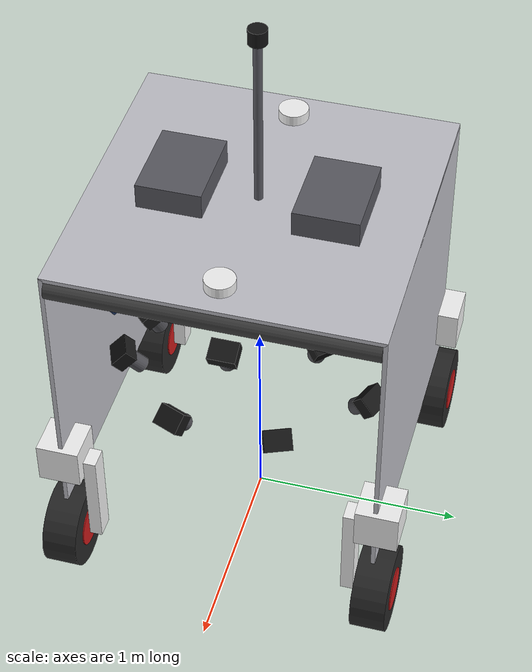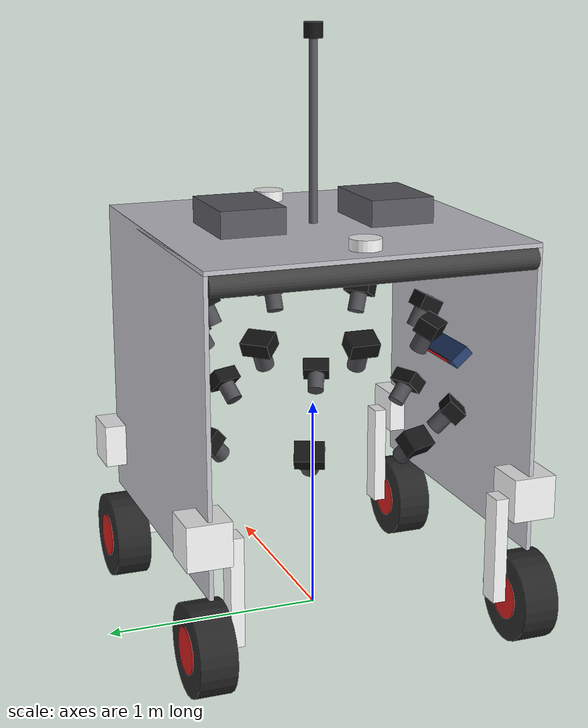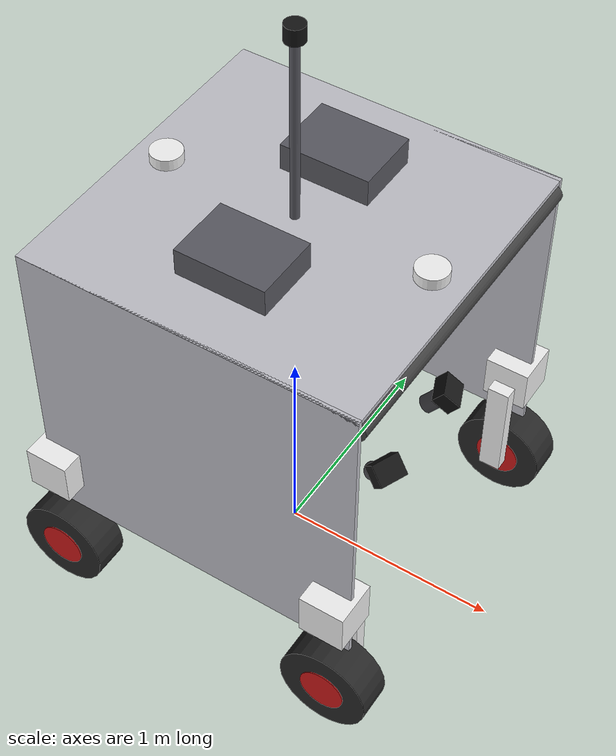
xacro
<?xml version="1.0"?>
<robot name="agri_ugv" xmlns:xacro="http://www.ros.org/wiki/xacro">

  <xacro:include filename="inertial_macros.xacro"/>
  <xacro:include filename="gazebo_control.xacro"/>
  <xacro:include filename="soil.xacro"/>
  <xacro:include filename="sensors.xacro"/>
  <xacro:include filename="payload.xacro"/>

  <!-- Path to the controller settings; empty = no ros2_control (e.g. RViz only) -->
  <xacro:arg name="controllers_file" default=""/>
  <!-- A second controller settings file, for hardware mounted on the robot that has its own
       ros2_control joints (e.g. an arm); empty = none (gazebo_control.xacro) -->
  <xacro:arg name="extra_controllers_file" default=""/>
  <!-- Soil profile in Gazebo: rigid (default, no slip model), firm, soft or wet (soil.xacro) -->
  <xacro:arg name="soil" default="rigid"/>
  <!-- The 3D LiDAR on the roof (sensors.xacro); false leaves it out, e.g. to save rendering -->
  <xacro:arg name="lidar" default="true"/>
  <!-- The two laser line scanners as sensors (sensors.xacro); false: visual only -->
  <xacro:arg name="scanners" default="true"/>
  <!-- their profiles per second; each one costs rendering time (the real ones: 200) -->
  <xacro:arg name="scanner_rate" default="10"/>
  <!-- The dome cameras as sensors (sensors.xacro): none (visual only), top (the 4 of the top
       ring, looking down at the plant) or all 20; each image costs rendering time -->
  <xacro:arg name="cameras" default="none"/>
  <!-- their images per second -->
  <xacro:arg name="camera_rate" default="2"/>
  <!-- true: the dome cameras also measure depth (RGB-D cameras, for 3D reconstruction) -->
  <xacro:arg name="camera_depth" default="false"/>
  <!-- ============ Dimensions (sources: docs/robot_spec.md) ============ -->
  <xacro:property name="track"           value="1.50"/>   <!-- left-right wheel spacing -->
  <xacro:property name="wheelbase"       value="1.35"/>   <!-- front-rear steering axes -->
  <xacro:property name="wheel_radius"    value="0.205"/>
  <xacro:property name="wheel_width"     value="0.165"/>
  <xacro:property name="box_size"        value="1.50"/>   <!-- enclosure footprint -->
  <xacro:property name="box_bottom_z"    value="0.45"/>   <!-- above ground -->
  <xacro:property name="box_top_z"       value="1.85"/>   <!-- above ground -->
  <xacro:property name="panel_thickness" value="0.02"/>
  <xacro:property name="steer_z"         value="0.70"/>   <!-- steering motor height above ground (estimated) -->
  <xacro:property name="susp_travel"     value="0.05"/>   <!-- +/- 5 cm, 0.10 m total (assumed) -->
  <xacro:property name="steer_limit"     value="${pi/2}"/> <!-- +/- 90 degrees -->

  <!-- ============ Masses (assumed; see docs/robot_spec.md) ============ -->
  <xacro:property name="enclosure_mass"  value="100.0"/>  <!-- enclosure, sensors, computers -->
  <xacro:property name="enclosure_com_z" value="1.40"/>   <!-- above ground -->
  <xacro:property name="chassis_mass"    value="100.0"/>  <!-- frame and batteries -->
  <xacro:property name="chassis_com_z"   value="0.80"/>   <!-- above ground -->
  <xacro:property name="steer_mass"      value="4.0"/>    <!-- per module: steering motor -->
  <xacro:property name="leg_mass"        value="6.0"/>    <!-- per module: leg, suspension, drive motor -->
  <xacro:property name="wheel_mass"      value="10.0"/>   <!-- per module: wheel and tyre -->

  <!-- ============ Suspension: passive spring and damper per wheel ============ -->
  <!-- Stiffness is chosen so the robot rests at mid-travel: each spring carries its
       share of the sprung weight when compressed susp_travel from full extension. -->
  <xacro:property name="gravity"               value="9.81"/>
  <xacro:property name="susp_damping_ratio"    value="0.4"/>   <!-- assumed; 0.3-0.5 is typical -->
  <xacro:property name="sprung_mass_per_wheel" value="${(enclosure_mass + chassis_mass + 4*steer_mass) / 4}"/>
  <xacro:property name="susp_stiffness"        value="${sprung_mass_per_wheel * gravity / susp_travel}"/>
  <xacro:property name="susp_damping"          value="${2 * susp_damping_ratio * sqrt(susp_stiffness * sprung_mass_per_wheel)}"/>
  <!-- Derived values: computed, never typed twice -->
  <xacro:property name="box_height" value="${box_top_z - box_bottom_z}"/>
  <xacro:property name="leg_length" value="${steer_z - wheel_radius}"/>

  <!-- ============ Colours for RViz ============ -->
  <material name="aluminium">
    <color rgba="0.75 0.75 0.78 1.0"/>
  </material>
  <material name="module_white">
    <color rgba="0.95 0.95 0.95 1.0"/>
  </material>
  <material name="rubber">
    <color rgba="0.15 0.15 0.15 1.0"/>
  </material>
  <material name="rim_red">
    <color rgba="0.80 0.10 0.10 1.0"/>
  </material>

  <!-- ============ Reference points ============ -->
  <!-- base_footprint: on the ground, below the robot's centre -->
  <link name="base_footprint"/>

  <!-- base_link: the robot's main reference point, at wheel-axle height -->
  <link name="base_link"/>

  <joint name="base_joint" type="fixed">
    <parent link="base_footprint"/>
    <child link="base_link"/>
    <origin xyz="0 0 ${wheel_radius}" rpy="0 0 0"/>
  </joint>

  <!-- ============ Chassis: frame and batteries (mass only, no visual) ============ -->
  <link name="chassis">
    <xacro:box_inertial mass="${chassis_mass}" x="${box_size}" y="${box_size}" z="0.20"/>
  </link>

  <joint name="chassis_joint" type="fixed">
    <parent link="base_link"/>
    <child link="chassis"/>
    <origin xyz="0 0 ${chassis_com_z - wheel_radius}" rpy="0 0 0"/>
  </joint>

  <!-- ============ Sensor enclosure ============ -->
  <!-- Roof plus left and right side panels. Front, rear and bottom are open,
       so plants pass through the robot. Link origin: centre of the bottom edge. -->
  <link name="enclosure">
    <!-- Roof -->
    <visual>
      <origin xyz="0 0 ${box_height - panel_thickness/2}" rpy="0 0 0"/>
      <geometry>
        <box size="${box_size} ${box_size} ${panel_thickness}"/>
      </geometry>
      <material name="aluminium"/>
    </visual>
    <collision>
      <origin xyz="0 0 ${box_height - panel_thickness/2}" rpy="0 0 0"/>
      <geometry>
        <box size="${box_size} ${box_size} ${panel_thickness}"/>
      </geometry>
    </collision>
    <!-- Left side panel (+y) -->
    <visual>
      <origin xyz="0 ${box_size/2 - panel_thickness/2} ${box_height/2}" rpy="0 0 0"/>
      <geometry>
        <box size="${box_size} ${panel_thickness} ${box_height}"/>
      </geometry>
      <material name="aluminium"/>
    </visual>
    <collision>
      <origin xyz="0 ${box_size/2 - panel_thickness/2} ${box_height/2}" rpy="0 0 0"/>
      <geometry>
        <box size="${box_size} ${panel_thickness} ${box_height}"/>
      </geometry>
    </collision>
    <!-- Right side panel (-y) -->
    <visual>
      <origin xyz="0 ${-(box_size/2 - panel_thickness/2)} ${box_height/2}" rpy="0 0 0"/>
      <geometry>
        <box size="${box_size} ${panel_thickness} ${box_height}"/>
      </geometry>
      <material name="aluminium"/>
    </visual>
    <collision>
      <origin xyz="0 ${-(box_size/2 - panel_thickness/2)} ${box_height/2}" rpy="0 0 0"/>
      <geometry>
        <box size="${box_size} ${panel_thickness} ${box_height}"/>
      </geometry>
    </collision>
    <!-- Mass of the enclosure plus everything mounted in it -->
    <xacro:box_inertial mass="${enclosure_mass}" x="${box_size}" y="${box_size}" z="${box_height}"
                        xyz="0 0 ${enclosure_com_z - box_bottom_z}"/>
  </link>

  <joint name="enclosure_joint" type="fixed">
    <parent link="base_link"/>
    <child link="enclosure"/>
    <!-- base_link is at wheel-axle height, so subtract it -->
    <origin xyz="0 0 ${box_bottom_z - wheel_radius}" rpy="0 0 0"/>
  </joint>

  <!-- ============ Wheel module: one corner ============ -->
  <!-- prefix: module name, e.g. front_left
       x_sign: +1 = front, -1 = rear
       y_sign: +1 = left,  -1 = right -->
  <xacro:macro name="wheel_module" params="prefix x_sign y_sign">

    <!-- 1. Steering motor: turns everything below it around a vertical axis -->
    <link name="${prefix}_steer_link">
      <visual>
        <geometry>
          <box size="0.20 0.20 0.20"/>
        </geometry>
        <material name="module_white"/>
      </visual>
      <xacro:box_inertial mass="${steer_mass}" x="0.20" y="0.20" z="0.20"/>
    </link>

    <joint name="${prefix}_steer_joint" type="revolute">
      <parent link="base_link"/>
      <child link="${prefix}_steer_link"/>
      <origin xyz="${x_sign*wheelbase/2} ${y_sign*track/2} ${steer_z - wheel_radius}" rpy="0 0 0"/>
      <axis xyz="0 0 1"/>
      <limit lower="${-steer_limit}" upper="${steer_limit}" effort="100" velocity="1.0"/>
    </joint>

    <!-- 2. Leg with suspension: slides up and down.
         The leg is drawn beside the wheel, on the inner side. -->
    <link name="${prefix}_leg_link">
      <visual>
        <origin xyz="0 ${-y_sign*(wheel_width/2 + 0.05)} ${-leg_length/2}" rpy="0 0 0"/>
        <geometry>
          <box size="0.10 0.06 ${leg_length}"/>
        </geometry>
        <material name="module_white"/>
      </visual>
      <xacro:box_inertial mass="${leg_mass}" x="0.10" y="0.06" z="${leg_length}"
                          xyz="0 ${-y_sign*(wheel_width/2 + 0.05)} ${-leg_length/2}"/>
    </link>

    <joint name="${prefix}_suspension_joint" type="prismatic">
      <parent link="${prefix}_steer_link"/>
      <child link="${prefix}_leg_link"/>
      <origin xyz="0 0 0" rpy="0 0 0"/>
      <axis xyz="0 0 1"/>
      <limit lower="${-susp_travel}" upper="${susp_travel}" effort="1000" velocity="0.5"/>
      <dynamics damping="${susp_damping}" friction="0.0"/>
    </joint>

    <!-- Spring: pushes the leg down, with zero force at full extension -->
    <gazebo reference="${prefix}_suspension_joint">
      <springReference>${-susp_travel}</springReference>
      <springStiffness>${susp_stiffness}</springStiffness>
    </gazebo>

    <!-- 3. Wheel: spins around its axle (the y axis) -->
    <link name="${prefix}_wheel_link">
      <!-- Tyre. Cylinders stand upright by default, so roll 90 deg to lay the axle along y -->
      <visual>
        <origin xyz="0 0 0" rpy="${pi/2} 0 0"/>
        <geometry>
          <cylinder radius="${wheel_radius}" length="${wheel_width}"/>
        </geometry>
        <material name="rubber"/>
      </visual>
      <!-- Rim -->
      <visual>
        <origin xyz="0 0 0" rpy="${pi/2} 0 0"/>
        <geometry>
          <cylinder radius="${wheel_radius*0.5}" length="${wheel_width + 0.01}"/>
        </geometry>
        <material name="rim_red"/>
      </visual>
      <!-- The part that touches the ground -->
      <collision>
        <origin xyz="0 0 0" rpy="${pi/2} 0 0"/>
        <geometry>
          <cylinder radius="${wheel_radius}" length="${wheel_width}"/>
        </geometry>
      </collision>
      <xacro:cylinder_inertial mass="${wheel_mass}" radius="${wheel_radius}" length="${wheel_width}"
                               rpy="${pi/2} 0 0"/>
    </link>

    <joint name="${prefix}_wheel_joint" type="continuous">
      <parent link="${prefix}_leg_link"/>
      <child link="${prefix}_wheel_link"/>
      <!-- Wheel centre sits leg_length below the steering motor: exactly at axle height -->
      <origin xyz="0 0 ${-leg_length}" rpy="0 0 0"/>
      <axis xyz="0 1 0"/>
    </joint>

  </xacro:macro>

  <!-- ============ The four corners ============ -->
  <xacro:wheel_module prefix="front_left"  x_sign="1"  y_sign="1"/>
  <xacro:wheel_module prefix="front_right" x_sign="1"  y_sign="-1"/>
  <xacro:wheel_module prefix="rear_left"   x_sign="-1" y_sign="1"/>
  <xacro:wheel_module prefix="rear_right"  x_sign="-1" y_sign="-1"/>

  <!-- ============ Sensors (sensors.xacro) ============ -->
  <xacro:property name="imu_x"      value="-0.60"/> <!-- at the back, as on the real robot -->
  <xacro:property name="imu_height" value="1.79"/>  <!-- above ground, just under the roof -->
  <xacro:imu_sensor x="${imu_x}" z="${imu_height - wheel_radius}" rate="100"/>
  <xacro:property name="gnss_height"   value="1.90"/>  <!-- antennas 5 cm above the roof -->
  <xacro:property name="gnss_baseline" value="1.20"/>  <!-- front-rear distance, gives the heading -->
  <xacro:gnss_antenna name="front" x="${gnss_baseline/2}"  z="${gnss_height - wheel_radius}" rate="10"/>
  <xacro:gnss_antenna name="rear"  x="${-gnss_baseline/2}" z="${gnss_height - wheel_radius}" rate="10"/>
  <xacro:gnss_system/>
  <xacro:property name="lidar_height" value="2.70"/>  <!-- optical centre above ground, on a mast -->
  <xacro:if value="$(arg lidar)">
    <xacro:lidar_sensor z="${lidar_height - wheel_radius}" mast_bottom="${box_top_z - wheel_radius}"
                        rate="10"/>
  </xacro:if>

  <!-- ============ Phenotyping payload (payload.xacro) ============ -->
  <xacro:payload roof_z="${box_top_z}"/>
  <!-- the line scanners measure: 300 points over 35 deg each, scanner_rate per second -->
  <xacro:if value="$(arg scanners)">
    <xacro:line_scanner_sensor side="left" rate="$(arg scanner_rate)" samples="300"
                               fan="${radians(35)}"/>
    <xacro:line_scanner_sensor side="right" rate="$(arg scanner_rate)" samples="300"
                               fan="${radians(35)}"/>
  </xacro:if>
  <!-- the cameras: 640 x 480 pixels, 60 deg wide (assumed lens) -->
  <xacro:if value="${'$(arg cameras)' == 'top'}">
    <xacro:dome_camera_sensors first="16" last="19" rate="$(arg camera_rate)" width="640"
                               height="480" fov="${radians(60)}" depth="$(arg camera_depth)"/>
  </xacro:if>
  <xacro:if value="${'$(arg cameras)' == 'all'}">
    <xacro:dome_camera_sensors first="0" last="19" rate="$(arg camera_rate)" width="640"
                               height="480" fov="${radians(60)}" depth="$(arg camera_depth)"/>
  </xacro:if>
  <xacro:if value="${'$(arg lidar)' in ('true', '1') or '$(arg scanners)' in ('true', '1')
                     or '$(arg cameras)' != 'none'}">
    <xacro:rendering_system/>
  </xacro:if>
    <!-- ============ ros2_control (only when a controllers file is given) ============ -->
  <xacro:if value="${'$(arg controllers_file)' != ''}">
    <xacro:gazebo_control controllers_file="$(arg controllers_file)"
                          extra_controllers_file="$(arg extra_controllers_file)"/>
    <xacro:if value="${'$(arg soil)' != 'rigid'}">
      <xacro:soil_model soil="$(arg soil)"/>
    </xacro:if>
  </xacro:if>

</robot>

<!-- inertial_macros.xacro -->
<!-- Inertia of simple solid shapes. Formulas: standard solid box and solid cylinder.
     xyz / rpy: where the centre of mass sits in the link, and how the shape is turned. -->
<robot xmlns:xacro="http://www.ros.org/wiki/xacro">

  <!-- Solid box with side lengths x, y, z [m] -->
  <xacro:macro name="box_inertial" params="mass x y z xyz:='0 0 0' rpy:='0 0 0'">
    <inertial>
      <origin xyz="${xyz}" rpy="${rpy}"/>
      <mass value="${mass}"/>
      <inertia ixx="${mass / 12.0 * (y*y + z*z)}" ixy="0.0" ixz="0.0"
               iyy="${mass / 12.0 * (x*x + z*z)}" iyz="0.0"
               izz="${mass / 12.0 * (x*x + y*y)}"/>
    </inertial>
  </xacro:macro>

  <!-- Solid cylinder whose axis is its local z axis -->
  <xacro:macro name="cylinder_inertial" params="mass radius length xyz:='0 0 0' rpy:='0 0 0'">
    <inertial>
      <origin xyz="${xyz}" rpy="${rpy}"/>
      <mass value="${mass}"/>
      <inertia ixx="${mass / 12.0 * (3*radius*radius + length*length)}" ixy="0.0" ixz="0.0"
               iyy="${mass / 12.0 * (3*radius*radius + length*length)}" iyz="0.0"
               izz="${mass / 2.0 * radius*radius}"/>
    </inertial>
  </xacro:macro>

</robot>

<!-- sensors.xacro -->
<!-- Sensors on the sprung body. Gazebo's sensor systems are loaded with the robot,
     so every world gets them. -->
<robot xmlns:xacro="http://www.ros.org/wiki/xacro">

  <xacro:macro name="imu_noise" params="axis white bias drift corr_time">
    <xacro:element xacro:name="${axis}">
      <noise type="gaussian">
        <mean>0</mean>
        <stddev>${white}</stddev>
        <bias_mean>0</bias_mean>
        <bias_stddev>${bias}</bias_stddev>
        <dynamic_bias_stddev>${drift * sqrt(2.0 / corr_time)}</dynamic_bias_stddev>
        <dynamic_bias_correlation_time>${corr_time}</dynamic_bias_correlation_time>
      </noise>
    </xacro:element>
  </xacro:macro>

  <xacro:macro name="imu_sensor" params="x z rate">
    <link name="imu_link">
      <visual>
        <geometry><box size="0.16 0.12 0.06"/></geometry>
        <material name="scanner_blue"/>
      </visual>
    </link>
    <joint name="imu_joint" type="fixed">
      <parent link="base_link"/>
      <child link="imu_link"/>
      <origin xyz="${x} 0 ${z}" rpy="0 0 0"/>
    </joint>
    <gazebo reference="imu_link">
      <sensor name="imu" type="imu">
        <always_on>true</always_on>
        <update_rate>${rate}</update_rate>
        <topic>/imu</topic>
        <ignition_frame_id>imu_link</ignition_frame_id>
        <imu>
          <angular_velocity>
            <xacro:imu_noise axis="x" white="0.0005" bias="0.0003" drift="2e-5" corr_time="300"/>
            <xacro:imu_noise axis="y" white="0.0005" bias="0.0003" drift="2e-5" corr_time="300"/>
            <xacro:imu_noise axis="z" white="0.0005" bias="0.0003" drift="2e-5" corr_time="300"/>
          </angular_velocity>
          <linear_acceleration>
            <xacro:imu_noise axis="x" white="0.005" bias="0.01" drift="2e-4" corr_time="300"/>
            <xacro:imu_noise axis="y" white="0.005" bias="0.01" drift="2e-4" corr_time="300"/>
            <xacro:imu_noise axis="z" white="0.005" bias="0.01" drift="2e-4" corr_time="300"/>
          </linear_acceleration>
        </imu>
      </sensor>
    </gazebo>
    <gazebo>
      <plugin filename="ignition-gazebo-imu-system" name="ignition::gazebo::systems::Imu"/>
    </gazebo>
  </xacro:macro>

  <xacro:macro name="gnss_antenna" params="name x z rate">
    <link name="gnss_${name}_link">
      <visual>                            <!-- antenna puck, its top at the phase centre -->
        <origin xyz="0 0 -0.025" rpy="0 0 0"/>
        <geometry><cylinder radius="0.07" length="0.05"/></geometry>
        <material name="module_white"/>
      </visual>
    </link>
    <joint name="gnss_${name}_joint" type="fixed">
      <parent link="base_link"/>
      <child link="gnss_${name}_link"/>
      <origin xyz="${x} 0 ${z}" rpy="0 0 0"/>
    </joint>
    <gazebo reference="gnss_${name}_link">
      <sensor name="gnss_${name}" type="navsat">
        <always_on>true</always_on>
        <update_rate>${rate}</update_rate>
        <topic>/gnss/${name}/fix_ideal</topic>
        <ignition_frame_id>gnss_${name}_link</ignition_frame_id>
      </sensor>
    </gazebo>
  </xacro:macro>

  <xacro:macro name="gnss_system">
    <gazebo>
      <plugin filename="ignition-gazebo-navsat-system" name="ignition::gazebo::systems::NavSat"/>
    </gazebo>
  </xacro:macro>

  <xacro:macro name="lidar_sensor" params="z mast_bottom rate">
    <link name="lidar_link">
      <visual>                            <!-- sensor housing -->
        <geometry><cylinder radius="0.043" length="0.07"/></geometry>
        <material name="camera_black"/>
      </visual>
      <visual>                            <!-- mast, down to the roof -->
        <origin xyz="0 0 ${-(z - mast_bottom) / 2}" rpy="0 0 0"/>
        <geometry><cylinder radius="0.02" length="${z - mast_bottom}"/></geometry>
        <material name="computer_grey"/>
      </visual>
    </link>
    <joint name="lidar_joint" type="fixed">
      <parent link="base_link"/>
      <child link="lidar_link"/>
      <origin xyz="0 0 ${z}" rpy="0 0 0"/>
    </joint>
    <gazebo reference="lidar_link">
      <sensor name="lidar" type="gpu_lidar">
        <always_on>true</always_on>
        <update_rate>${rate}</update_rate>
        <topic>/lidar</topic>
        <ignition_frame_id>lidar_link</ignition_frame_id>
        <visualize>false</visualize>
        <lidar>
          <scan>
            <horizontal>
              <samples>1024</samples>
              <resolution>1</resolution>
              <min_angle>${-pi}</min_angle>
              <max_angle>${pi - 2 * pi / 1024}</max_angle>
            </horizontal>
            <vertical>
              <samples>64</samples>
              <resolution>1</resolution>
              <min_angle>${-pi / 4}</min_angle>
              <max_angle>${pi / 4}</max_angle>
            </vertical>
          </scan>
          <range>
            <min>0.3</min>
            <max>50.0</max>
            <resolution>0.001</resolution>
          </range>
          <noise>
            <type>gaussian</type>
            <mean>0.0</mean>
            <stddev>0.01</stddev>
          </noise>
        </lidar>
      </sensor>
    </gazebo>
  </xacro:macro>

  <xacro:macro name="line_scanner_sensor" params="side rate samples fan">
    <link name="line_scanner_${side}_beam_link"/>
    <joint name="line_scanner_${side}_beam_joint" type="fixed">
      <parent link="line_scanner_${side}_link"/>
      <child link="line_scanner_${side}_beam_link"/>
      <origin xyz="0 0 0" rpy="${pi / 2} 0 0"/>
    </joint>
    <gazebo reference="line_scanner_${side}_beam_link">
      <sensor name="line_scanner_${side}" type="gpu_lidar">
        <always_on>true</always_on>
        <update_rate>${rate}</update_rate>
        <topic>/scanners/${side}</topic>
        <ignition_frame_id>line_scanner_${side}_beam_link</ignition_frame_id>
        <visualize>false</visualize>
        <lidar>
          <scan>
            <horizontal>
              <samples>${samples}</samples>
              <resolution>1</resolution>
              <min_angle>${-fan / 2}</min_angle>
              <max_angle>${fan / 2}</max_angle>
            </horizontal>
            <vertical>
              <samples>1</samples>
              <resolution>1</resolution>
              <min_angle>0</min_angle>
              <max_angle>0</max_angle>
            </vertical>
          </scan>
          <range>
            <min>0.39</min>
            <max>2.0</max>
            <resolution>0.0001</resolution>
          </range>
          <noise>
            <type>gaussian</type>
            <mean>0.0</mean>
            <stddev>0.0005</stddev>
          </noise>
        </lidar>
      </sensor>
    </gazebo>
  </xacro:macro>

  <xacro:macro name="dome_camera_sensor" params="index rate width height fov depth:=false">
    <link name="dome_camera_${index}_optical_link"/>
    <joint name="dome_camera_${index}_optical_joint" type="fixed">
      <parent link="dome_camera_${index}_link"/>
      <child link="dome_camera_${index}_optical_link"/>
      <origin xyz="0.095 0 0" rpy="0 0 0"/>
    </joint>
    <gazebo reference="dome_camera_${index}_optical_link">
      <sensor name="dome_camera_${index}" type="${'rgbd_camera' if depth else 'camera'}">
        <always_on>true</always_on>
        <update_rate>${rate}</update_rate>
        <topic>/cameras/dome_${index}${'' if depth else '/image'}</topic>
        <ignition_frame_id>dome_camera_${index}_optical_link</ignition_frame_id>
        <visualize>false</visualize>
        <camera>
          <horizontal_fov>${fov}</horizontal_fov>
          <image>
            <width>${width}</width>
            <height>${height}</height>
            <format>R8G8B8</format>
          </image>
          <clip>
            <near>0.05</near>
            <far>10.0</far>
          </clip>
          <noise>
            <type>gaussian</type>
            <mean>0.0</mean>
            <stddev>0.007</stddev>
          </noise>
        </camera>
      </sensor>
    </gazebo>
  </xacro:macro>

  <!-- the dome cameras first..last (indices) as sensors -->
  <xacro:macro name="dome_camera_sensors" params="first last rate width height fov depth:=false">
    <xacro:dome_camera_sensor index="${first}" rate="${rate}" width="${width}"
                              height="${height}" fov="${fov}" depth="${depth}"/>
    <xacro:if value="${first &lt; last}">
      <xacro:dome_camera_sensors first="${first + 1}" last="${last}" rate="${rate}"
                                 width="${width}" height="${height}" fov="${fov}"
                                 depth="${depth}"/>
    </xacro:if>
  </xacro:macro>

  <!-- Gazebo's Sensors system renders the camera-like sensors (LiDAR, line scanners, cameras)
       with Ogre 2 -->
  <xacro:macro name="rendering_system">
    <gazebo>
      <plugin filename="ignition-gazebo-sensors-system" name="ignition::gazebo::systems::Sensors">
        <render_engine>ogre2</render_engine>
      </plugin>
    </gazebo>
  </xacro:macro>

</robot>

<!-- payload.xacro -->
<robot xmlns:xacro="http://www.ros.org/wiki/xacro">

  <material name="camera_black"><color rgba="0.08 0.08 0.08 1"/></material>
  <material name="lens_grey"><color rgba="0.30 0.30 0.32 1"/></material>
  <material name="led_white"><color rgba="1.0 1.0 0.95 1"/></material>
  <material name="scanner_blue"><color rgba="0.15 0.25 0.45 1"/></material>
  <material name="laser_red"><color rgba="0.90 0.10 0.10 1"/></material>
  <material name="curtain_grey"><color rgba="0.25 0.25 0.25 1"/></material>
  <material name="computer_grey"><color rgba="0.35 0.35 0.38 1"/></material>

  <!-- A fixed, massless link on base_link at (x, y, z) above the ground: sdformat merges
       it into the body, keeping its visuals where they are. +x is the viewing direction. -->
  <xacro:macro name="payload_joint" params="name x y z pitch:=0 yaw:=0">
    <joint name="${name}_joint" type="fixed">
      <parent link="base_link"/>
      <child link="${name}_link"/>
      <origin xyz="${x} ${y} ${z - wheel_radius}" rpy="0 ${pitch} ${yaw}"/>
    </joint>
  </xacro:macro>

  <!-- One camera of the dome at (x, y, z), aimed at the plant point (0, 0, target_z) -->
  <xacro:macro name="dome_camera" params="index x y z target_z">
    <link name="dome_camera_${index}_link">
      <visual>
        <origin xyz="-0.035 0 0" rpy="0 0 0"/>
        <geometry><box size="0.07 0.13 0.10"/></geometry>
        <material name="camera_black"/>
      </visual>
      <visual>
        <origin xyz="0.045 0 0" rpy="0 ${pi/2} 0"/>
        <geometry><cylinder radius="0.04" length="0.09"/></geometry>
        <material name="lens_grey"/>
      </visual>
    </link>
    <xacro:payload_joint name="dome_camera_${index}" x="${x}" y="${y}" z="${z}"
                         pitch="${atan2(z - target_z, sqrt(x*x + y*y))}"
                         yaw="${atan2(-y, -x)}"/>
  </xacro:macro>

  <!-- count cameras evenly around a ring of the given radius and height -->
  <xacro:macro name="camera_ring" params="first count radius z target_z offset i:=0">
    <xacro:dome_camera index="${first + i}" z="${z}" target_z="${target_z}"
                       x="${radius * cos(offset + 2*pi*i/count)}"
                       y="${radius * sin(offset + 2*pi*i/count)}"/>
    <xacro:if value="${i + 1 &lt; count}">
      <xacro:camera_ring first="${first}" count="${count}" radius="${radius}" z="${z}"
                         target_z="${target_z}" offset="${offset}" i="${i + 1}"/>
    </xacro:if>
  </xacro:macro>

  <!-- Laser line scanner on a side panel, looking down and across, tilt from vertical -->
  <xacro:macro name="line_scanner" params="side y z tilt">
    <link name="line_scanner_${side}_link">
      <visual>
        <origin xyz="0 0 0" rpy="0 0 0"/>
        <geometry><box size="0.10 0.37 0.05"/></geometry>
        <material name="scanner_blue"/>
      </visual>
      <visual>
        <origin xyz="0.051 0 0" rpy="0 0 0"/>
        <geometry><box size="0.002 0.25 0.03"/></geometry>
        <material name="laser_red"/>
      </visual>
    </link>
    <xacro:payload_joint name="line_scanner_${side}" x="0" y="${y}" z="${z}"
                         pitch="${pi/2 - tilt}" yaw="${-pi/2 if y > 0 else pi/2}"/>
  </xacro:macro>

  <xacro:macro name="payload" params="roof_z">
    <xacro:camera_ring first="0"  count="8" radius="0.62" z="0.95" target_z="0.30" offset="${pi/8}"/>
    <xacro:camera_ring first="8"  count="8" radius="0.55" z="1.40" target_z="0.30" offset="0"/>
    <xacro:camera_ring first="16" count="4" radius="0.30" z="1.72" target_z="0.30" offset="${pi/4}"/>
    <!-- 0.67 m from the centre: the tilted body (reaching 5.4 cm sideways) stays inside
         the panels; the paper's robot has them 1.4 m apart -->
    <xacro:line_scanner side="left"  y="0.67"  z="1.20" tilt="${radians(50)}"/>
    <xacro:line_scanner side="right" y="-0.67" z="1.20" tilt="${radians(50)}"/>

    <link name="led_panels_link">
      <xacro:macro name="led_panel" params="x y">
        <visual>
          <origin xyz="${x} ${y} 0" rpy="0 0 0"/>
          <geometry><box size="0.40 0.20 0.02"/></geometry>
          <material name="led_white"/>
        </visual>
      </xacro:macro>
      <xacro:led_panel x="0.35"  y="0.45"/>
      <xacro:led_panel x="0.35"  y="-0.45"/>
      <xacro:led_panel x="-0.35" y="0.45"/>
      <xacro:led_panel x="-0.35" y="-0.45"/>
    </link>
    <xacro:payload_joint name="led_panels" x="0" y="0" z="${roof_z - 0.03}"/>

    <link name="curtains_link">         <!-- rolled up over the front and rear openings -->
      <visual>
        <origin xyz="0.72 0 0" rpy="${pi/2} 0 0"/>
        <geometry><cylinder radius="0.05" length="1.46"/></geometry>
        <material name="curtain_grey"/>
      </visual>
      <visual>
        <origin xyz="-0.72 0 0" rpy="${pi/2} 0 0"/>
        <geometry><cylinder radius="0.05" length="1.46"/></geometry>
        <material name="curtain_grey"/>
      </visual>
    </link>
    <xacro:payload_joint name="curtains" x="0" y="0" z="${roof_z - 0.07}"/>

    <link name="computers_link">        <!-- two computers on the roof (position assumed) -->
      <visual>
        <origin xyz="0 0.35 0" rpy="0 0 0"/>
        <geometry><box size="0.40 0.30 0.12"/></geometry>
        <material name="computer_grey"/>
      </visual>
      <visual>
        <origin xyz="0 -0.35 0" rpy="0 0 0"/>
        <geometry><box size="0.40 0.30 0.12"/></geometry>
        <material name="computer_grey"/>
      </visual>
    </link>
    <xacro:payload_joint name="computers" x="0" y="0" z="${roof_z + 0.06}"/>
  </xacro:macro>

</robot>
